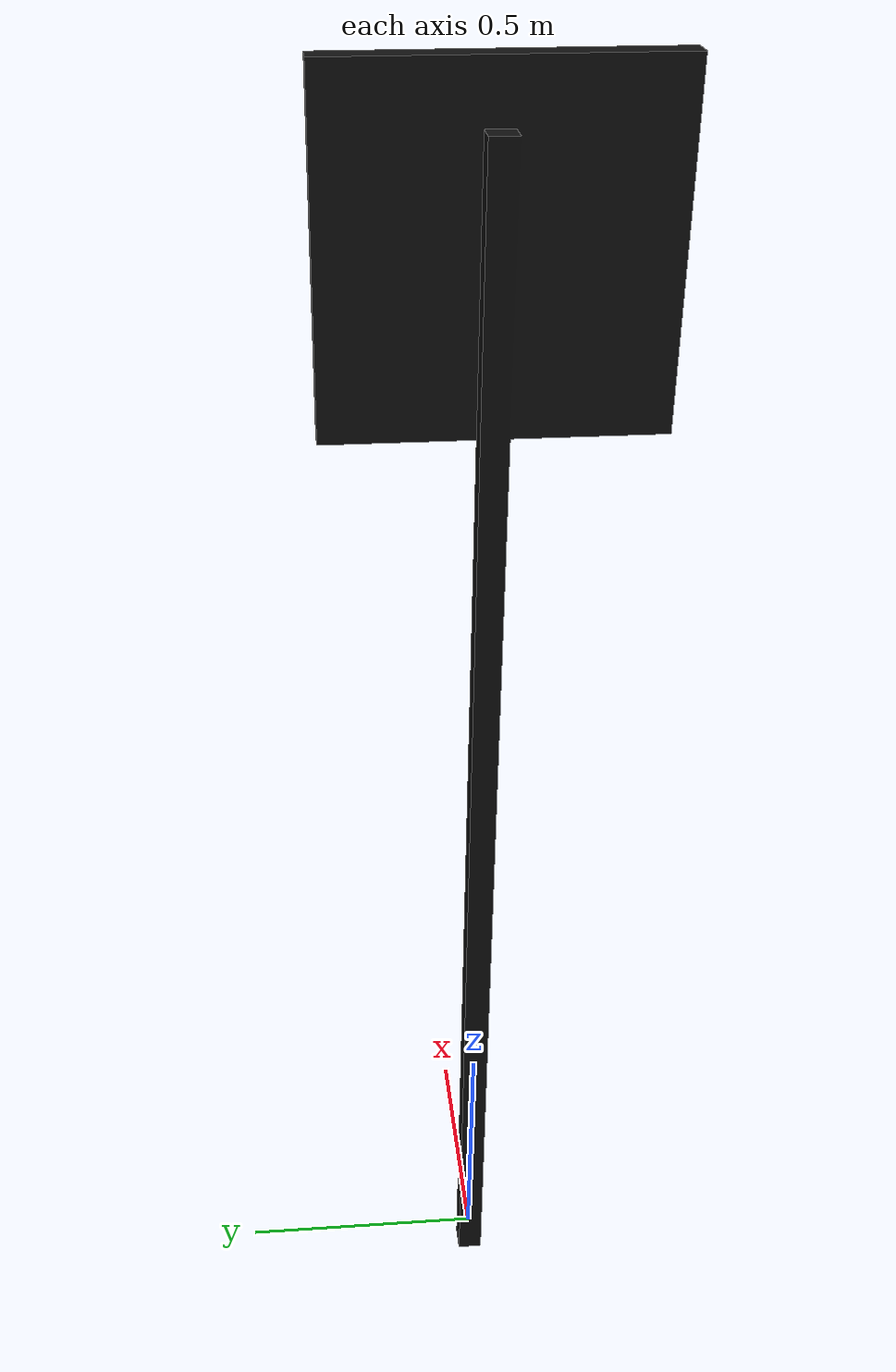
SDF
<?xml version="1.0" ?>
<sdf version="1.5">
  <model name="engelli_park_levha">
    <static>true</static>
    <link name="link">
      <collision name="collision">
        <geometry>
          <mesh>
            <uri>model://engelli_park_levha/meshes/engelli_park_levha.dae</uri>
          </mesh>
        </geometry>
      </collision>
      <visual name="visual">
        <geometry>
          <mesh>
            <uri>model://engelli_park_levha/meshes/engelli_park_levha.dae</uri>
          </mesh>
        </geometry>
      </visual>
    </link>
  </model>
</sdf>
